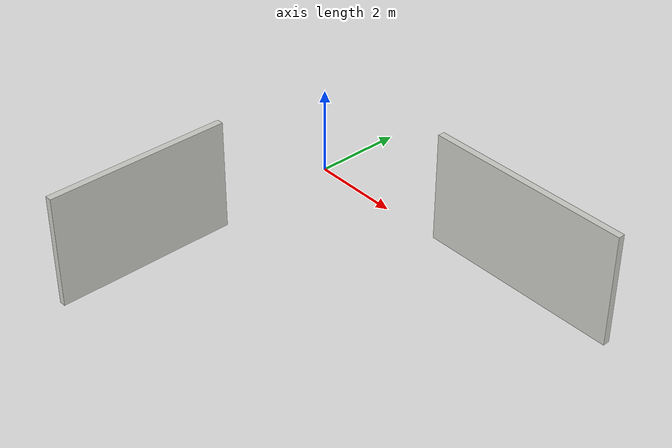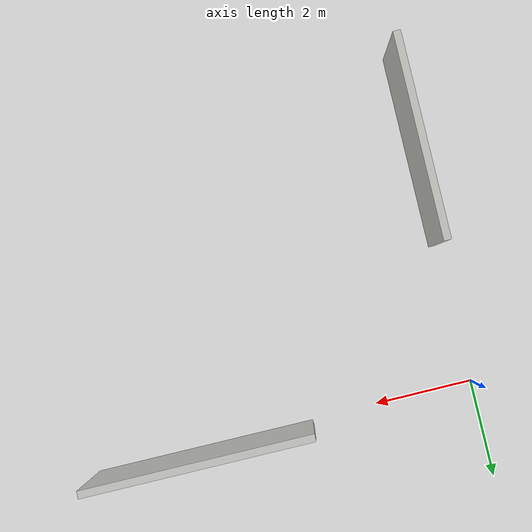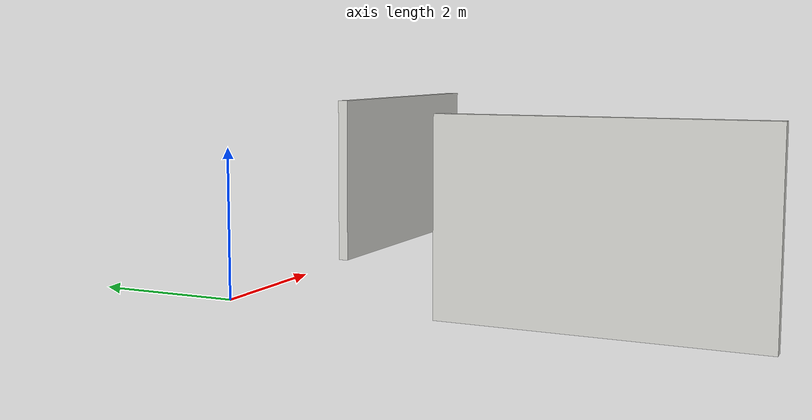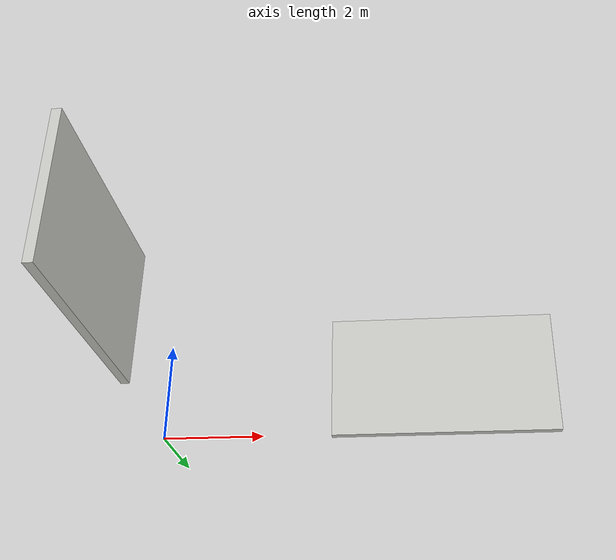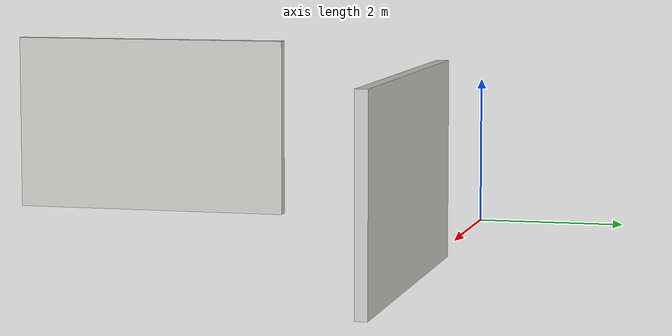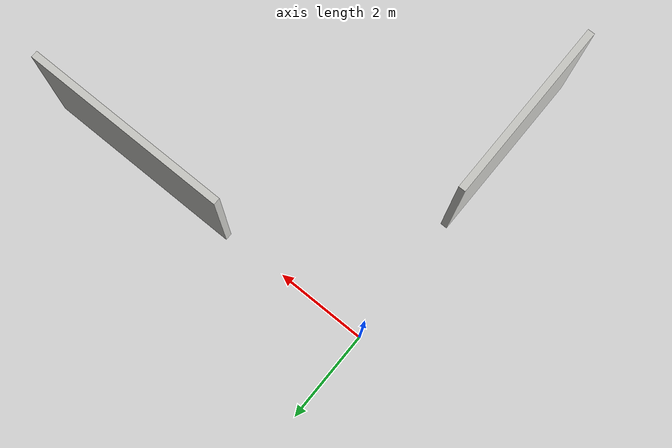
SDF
<?xml version='1.0'?>
<sdf version='1.7'>
  <model name='model1'>
    <pose>3.92179 -3.35614 0 0 -0 0</pose>
    <link name='Wall_15'>
      <collision name='Wall_15_Collision'>
        <geometry>
          <box>
            <size>4 0.15 2.5</size>
          </box>
        </geometry>
        <pose>0 0 1.25 0 -0 0</pose>
      </collision>
      <visual name='Wall_15_Visual'>
        <pose>0 0 1.25 0 -0 0</pose>
        <geometry>
          <box>
            <size>4 0.15 2.5</size>
          </box>
        </geometry>
        <material>
          <script>
            <uri>file://media/materials/scripts/gazebo.material</uri>
            <name>Gazebo/CeilingTiled</name>
          </script>
          <ambient>1 1 1 1</ambient>
        </material>
        <meta>
          <layer>0</layer>
        </meta>
      </visual>
      <pose>-3.80621 -1.52053 0 0 -0 1.5708</pose>
    </link>
    <link name='Wall_23'>
      <collision name='Wall_23_Collision'>
        <geometry>
          <box>
            <size>4.5 0.15 2.5</size>
          </box>
        </geometry>
        <pose>0 0 1.25 0 -0 0</pose>
      </collision>
      <visual name='Wall_23_Visual'>
        <pose>0 0 1.25 0 -0 0</pose>
        <geometry>
          <box>
            <size>4.5 0.15 2.5</size>
          </box>
        </geometry>
        <material>
          <script>
            <uri>file://media/materials/scripts/gazebo.material</uri>
            <name>Gazebo/CeilingTiled</name>
          </script>
          <ambient>1 1 1 1</ambient>
        </material>
        <meta>
          <layer>0</layer>
        </meta>
      </visual>
      <pose>1.67179 3.44553 0 0 -0 3.14159</pose>
    </link>
    <static>1</static>
  </model>
</sdf>
